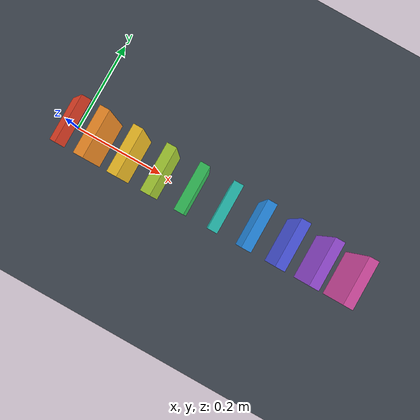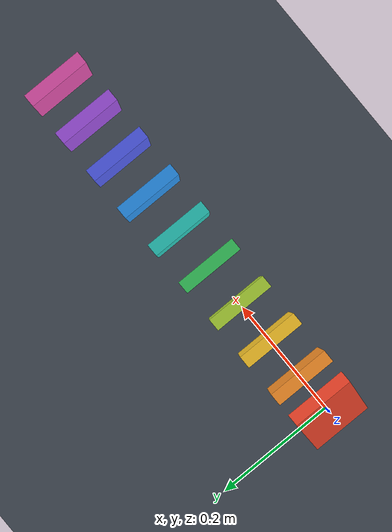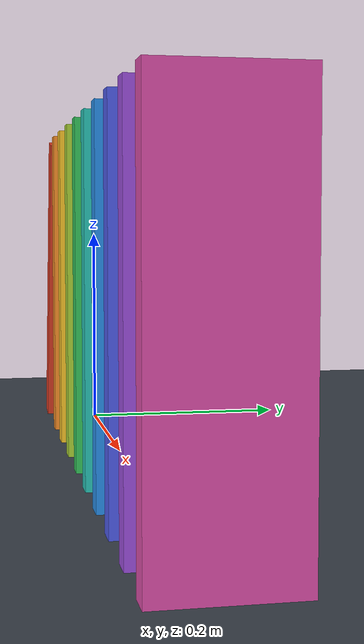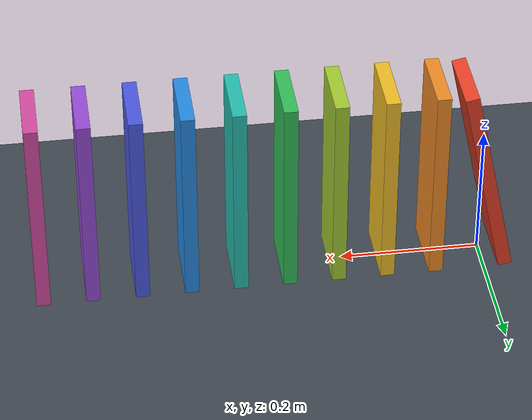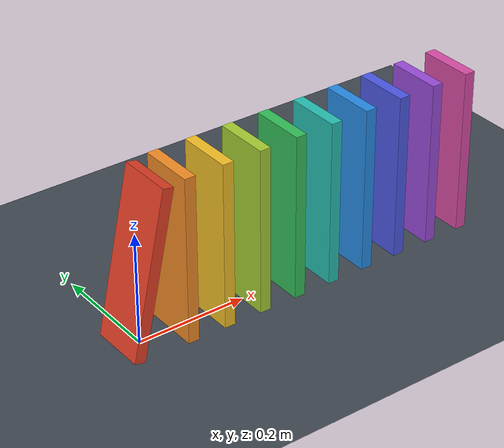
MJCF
<mujoco model="ten_domino_chain">
  <compiler angle="degree"/>
  <option timestep="0.002" gravity="0 0 -9.81" integrator="implicitfast" solver="Newton" iterations="100" cone="elliptic"/>

  <worldbody>
    <light name="main_light" pos="0.3 -0.6 2" dir="0 0 -1" diffuse="0.8 0.8 0.8"/>
    <camera name="overview" pos="0.32 -1.4 0.85" xyaxes="1 0 0 0 0.447214 0.894427"/>

    <geom name="floor" type="plane" pos="0 0 0" size="2 2 0.1" friction="0.8 0.005 0.0001" condim="3" rgba="0.25 0.28 0.32 1"/>

    <!-- The first domino starts tilted 12 degrees toward +x, beyond its balance point. -->
    <body name="domino1" pos="0 0 0.148802" quat="0.9945218954 0 0.1045284633 0">
      <freejoint name="domino1_free"/>
      <geom name="domino1_geom" type="box" size="0.01 0.05 0.15" mass="0.36" friction="0.8 0.005 0.0001" condim="3" solref="0.006 1" solimp="0.95 0.99 0.001" rgba="0.9 0.25 0.15 1"/>
    </body>

    <body name="domino2" pos="0.07 0 0.15">
      <freejoint name="domino2_free"/>
      <geom name="domino2_geom" type="box" size="0.01 0.05 0.15" mass="0.36" friction="0.8 0.005 0.0001" condim="3" solref="0.006 1" solimp="0.95 0.99 0.001" rgba="0.95 0.55 0.15 1"/>
    </body>

    <body name="domino3" pos="0.14 0 0.15">
      <freejoint name="domino3_free"/>
      <geom name="domino3_geom" type="box" size="0.01 0.05 0.15" mass="0.36" friction="0.8 0.005 0.0001" condim="3" solref="0.006 1" solimp="0.95 0.99 0.001" rgba="0.95 0.75 0.15 1"/>
    </body>

    <body name="domino4" pos="0.21 0 0.15">
      <freejoint name="domino4_free"/>
      <geom name="domino4_geom" type="box" size="0.01 0.05 0.15" mass="0.36" friction="0.8 0.005 0.0001" condim="3" solref="0.006 1" solimp="0.95 0.99 0.001" rgba="0.65 0.8 0.2 1"/>
    </body>

    <body name="domino5" pos="0.28 0 0.15">
      <freejoint name="domino5_free"/>
      <geom name="domino5_geom" type="box" size="0.01 0.05 0.15" mass="0.36" friction="0.8 0.005 0.0001" condim="3" solref="0.006 1" solimp="0.95 0.99 0.001" rgba="0.2 0.75 0.35 1"/>
    </body>

    <body name="domino6" pos="0.35 0 0.15">
      <freejoint name="domino6_free"/>
      <geom name="domino6_geom" type="box" size="0.01 0.05 0.15" mass="0.36" friction="0.8 0.005 0.0001" condim="3" solref="0.006 1" solimp="0.95 0.99 0.001" rgba="0.15 0.75 0.7 1"/>
    </body>

    <body name="domino7" pos="0.42 0 0.15">
      <freejoint name="domino7_free"/>
      <geom name="domino7_geom" type="box" size="0.01 0.05 0.15" mass="0.36" friction="0.8 0.005 0.0001" condim="3" solref="0.006 1" solimp="0.95 0.99 0.001" rgba="0.15 0.55 0.9 1"/>
    </body>

    <body name="domino8" pos="0.49 0 0.15">
      <freejoint name="domino8_free"/>
      <geom name="domino8_geom" type="box" size="0.01 0.05 0.15" mass="0.36" friction="0.8 0.005 0.0001" condim="3" solref="0.006 1" solimp="0.95 0.99 0.001" rgba="0.3 0.35 0.9 1"/>
    </body>

    <body name="domino9" pos="0.56 0 0.15">
      <freejoint name="domino9_free"/>
      <geom name="domino9_geom" type="box" size="0.01 0.05 0.15" mass="0.36" friction="0.8 0.005 0.0001" condim="3" solref="0.006 1" solimp="0.95 0.99 0.001" rgba="0.6 0.3 0.85 1"/>
    </body>

    <body name="domino10" pos="0.63 0 0.15">
      <freejoint name="domino10_free"/>
      <geom name="domino10_geom" type="box" size="0.01 0.05 0.15" mass="0.36" friction="0.8 0.005 0.0001" condim="3" solref="0.006 1" solimp="0.95 0.99 0.001" rgba="0.85 0.3 0.65 1"/>
    </body>
  </worldbody>
</mujoco>
